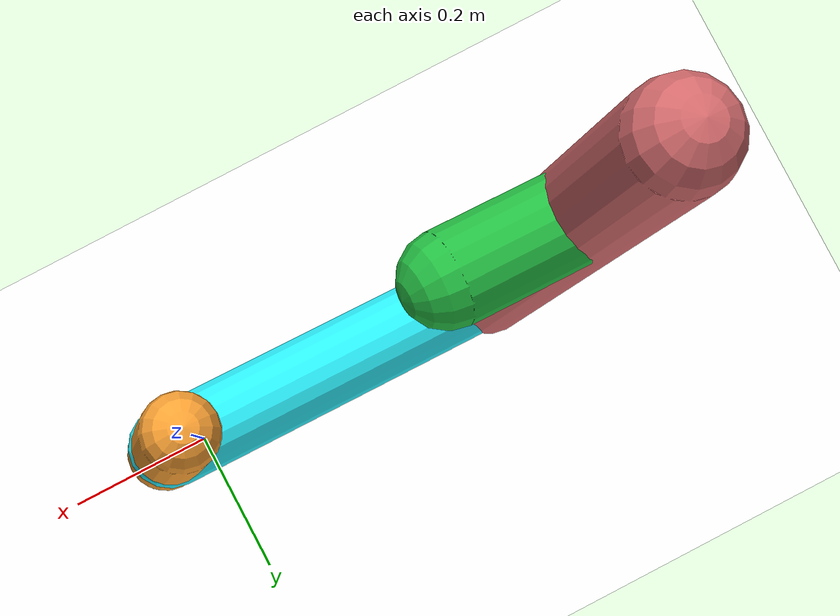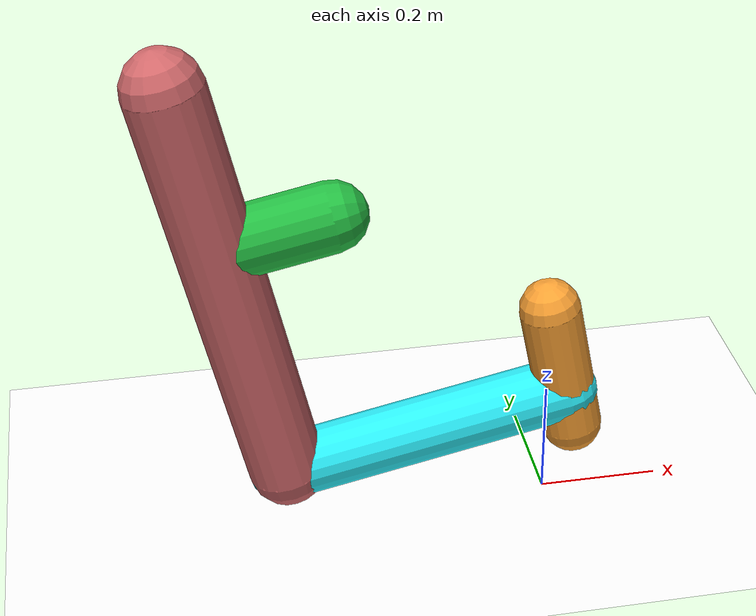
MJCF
<mujoco model="morphology">
  <option timestep="0.01"/>
  <default>
    <default class="/"/>
  </default>
  <asset>
    <texture name="texplane" type="2d" builtin="checker" rgb1="0.1 0.2 0.3" rgb2="0.2 0.3 0.4" width="300" height="300"/>
    <material name="MatPlane" class="/" texture="texplane" texrepeat="20 20" specular="1" shininess="1" reflectance="0.5"/>
  </asset>
  <worldbody>
    <light name="//unnamed_light_0" class="/" directional="true" pos="0 0 1.5" dir="0 0 -1.3" cutoff="1e+02" exponent="1" diffuse="1 1 1" specular="0.1 0.1 0.1"/>
    <geom name="ground" class="/" type="plane" size="15 15 0.5" material="MatPlane" rgba="1 1 1 1"/>
    <body name="body" pos="0 0 0.36">
      <geom name="geom0" class="/" type="capsule" contype="1" conaffinity="1" condim="3" size="0.051" rgba="0.98 0.63 0.2 1" friction="0.4 0.1 0.1" fromto="0 0 0 0.046 0 -0.23"/>
      <body name="body1" pos="0.032 0 -0.16">
        <geom name="geom1" class="/" type="capsule" contype="1" conaffinity="1" condim="3" size="0.054" rgba="0.17 0.94 0.99 1" friction="0.4 0.1 0.1" fromto="0 0 0 -0.48 0 -0.1"/>
        <body name="body2" pos="-0.47 0 -0.098">
          <geom name="geom2" class="/" type="capsule" contype="1" conaffinity="1" condim="3" size="0.064" rgba="0.82 0.41 0.42 1" friction="0.4 0.1 0.1" fromto="0 0 0 -0.15 0 0.7"/>
          <body name="body3" pos="-0.091 0 0.43">
            <geom name="geom3" class="/" type="capsule" contype="1" conaffinity="1" condim="3" size="0.057" rgba="0.14 0.74 0.26 1" friction="0.4 0.1 0.1" fromto="0 0 0 0.18 0 0.037"/>
            <joint name="joint3" class="/" type="hinge" axis="0 1 0" limited="true" stiffness="20" range="-66 66" armature="0.1" damping="2"/>
          </body>
          <joint name="joint2" class="/" type="hinge" axis="0 1 0" limited="true" stiffness="20" range="-36 36" armature="0.1" damping="2"/>
        </body>
        <joint name="joint1" class="/" type="hinge" axis="0 1 0" limited="true" stiffness="20" range="-44 44" armature="0.1" damping="2"/>
      </body>
      <joint name="rootx" class="/" type="slide" axis="1 0 0" limited="false" stiffness="0" armature="0" damping="0"/>
      <joint name="rootz" class="/" type="slide" axis="0 0 1" limited="false" stiffness="0" armature="0" damping="0"/>
      <joint name="rooty" class="/" type="hinge" axis="0 1 0" limited="false" stiffness="0" armature="0" damping="0"/>
    </body>
  </worldbody>
  <actuator>
    <motor name="motor3" class="/" ctrllimited="true" ctrlrange="-1 1" gear="1.9e+02" joint="joint3"/>
    <motor name="motor2" class="/" ctrllimited="true" ctrlrange="-1 1" gear="1.8e+02" joint="joint2"/>
    <motor name="motor1" class="/" ctrllimited="true" ctrlrange="-1 1" gear="1.6e+02" joint="joint1"/>
  </actuator>
  <sensor>
    <subtreelinvel name="velocity" body="body"/>
  </sensor>
</mujoco>
